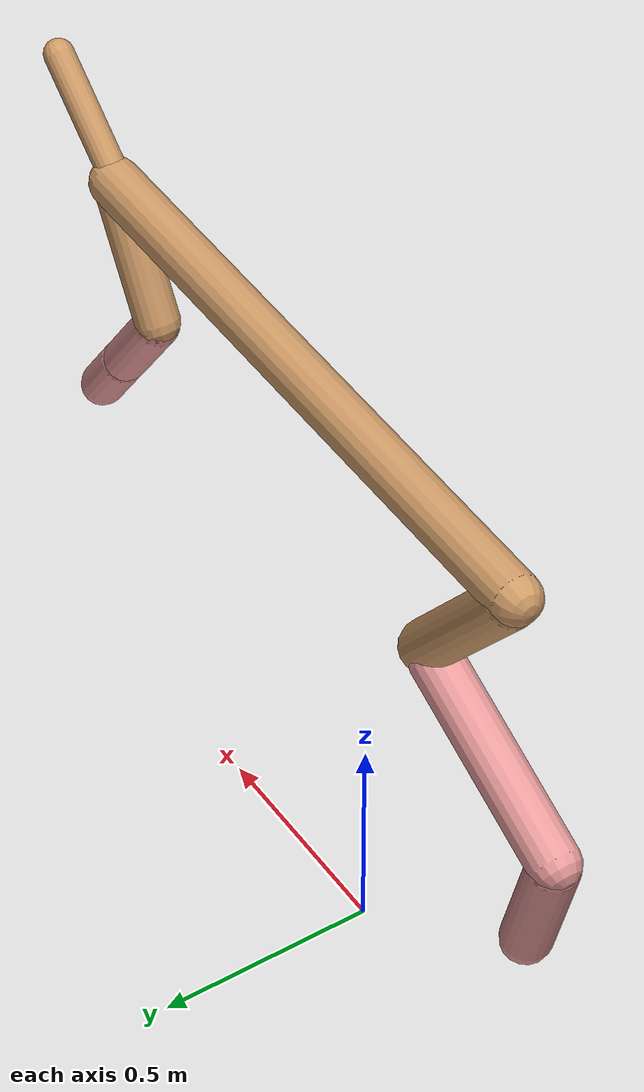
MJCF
<mujoco model="cheetah">
  <compiler angle="radian" coordinate="local" inertiafromgeom="true" settotalmass="14" />
  <default>
    <joint armature=".1" damping=".01" limited="true" solimplimit="0 .8 .03" solreflimit=".02 1" stiffness="8" />
    <geom conaffinity="0" condim="3" contype="1" friction="0.8 .1 .1" rgba="0.8 0.6 .4 1" solimp="0.0 0.8 0.01" solref="0.02 1" />
    <motor ctrllimited="true" ctrlrange="-1 1" />
  </default>
  <size nstack="300000" nuser_geom="1" />
  <option gravity="0 0 -9.81" timestep="0.01" />
  <worldbody>
    <body name="torso" pos="0.0 0.0 1.3811226075021699">
      <joint armature="0" axis="1 0 0" damping="0" limited="false" name="ignorex" pos="0 0 0" stiffness="0" type="slide" />
      <joint armature="0" axis="0 0 1" damping="0" limited="false" name="ignorez" pos="0 0 0" stiffness="0" type="slide" />
      <joint armature="0" axis="0 1 0" damping="0" limited="false" name="ignorey" pos="0 0 0" stiffness="0" type="hinge" />
      <geom fromto="-0.5 0.0 0.0 0.9574910506082805 0.0 0.0" name="torso" size="0.05612526258538442" type="capsule" />
      <geom axisangle="0 1 0 .87" name="head" pos="1.0574910506082804 0.0 0.1" size="0.033045607145175085 0.15" type="capsule" />

      <body name="bthigh" pos="-.5 0 0">
        <joint axis="0 1 0" damping="6" name="bthigh" pos="0 0 0" range="-.52 1.05" stiffness="240" type="hinge" />
        <geom axisangle="0 1 0 -3.8" name="bthigh" pos="0.1510311259080939 0.0 -0.19634046368052208" size="0.056589544952635754 0.2286972695659446" type="capsule" />
        <body name="bshin" pos="0.2620622518161878 0.0 -0.38268092736104414">
          <joint axis="0 1 0" damping="4.5" name="bshin" pos="0 0 0" range="-.785 .785" stiffness="180" type="hinge" />
          <geom axisangle="0 1 0 -2.03" name="bshin" pos="-0.21744253142644548 0.0 -0.10872126571322274" rgba="0.9 0.6 0.6 1" size="0.056589544952635754 0.23658338230959788" type="capsule" />
          <body name="bfoot" pos="-0.43488506285289097 0.0 -0.21744253142644548">
            <joint axis="0 1 0" damping="3" name="bfoot" pos="0 0 0" range="-.4 .785" stiffness="120" type="hinge" />
            <geom axisangle="0 1 0 -.27" name="bfoot" pos="0.04603186793455466 0.0 -0.14883637298839342" rgba="0.9 0.6 0.6 1" size="0.056589544952635754 0.14825891958068135" type="capsule" />
            <inertial mass="10" />
          </body>
        </body>
      </body>
      <body name="fthigh" pos="0.9574910506082805 0.0 0.0">
        <joint axis="0 1 0" damping="4.5" name="fthigh" pos="0 0 0" range="-1.5 0.8" stiffness="180" type="hinge" />
        <geom axisangle="0 1 0 .52" name="fthigh" pos="-0.08081818309937364 0.0 -0.13854545674178337" size="0.04912545299252833 0.15447014325366581" type="capsule" />
        <body name="fshin" pos="-0.16163636619874727 0.0 -0.27709091348356674">
          <joint axis="0 1 0" damping="3" name="fshin" pos="0 0 0" range="-1.2 1.1" stiffness="120" type="hinge" />
          <geom axisangle="0 1 0 -.6" name="fshin" pos="0.07501864663803677 0.0 -0.10387197226805091" rgba="0.9 0.6 0.6 1" size="0.04912545299252833 0.12311154274352314" type="capsule" />
          <body name="ffoot" pos="0.15003729327607354 0.0 -0.20774394453610182">
            <joint axis="0 1 0" damping="1.5" name="ffoot" pos="0 0 0" range="-3.1 -0.3" stiffness="60" type="hinge" />
            <geom axisangle="0 1 0 -.6" name="ffoot" pos="0.051110601553162154 0.0 -0.0795053801938078" rgba="0.9 0.6 0.6 1" size="0.04912545299252833 0.08130007539666623" type="capsule" />
            <inertial mass="10" />
          </body>
        </body>
      </body>
    </body>
  </worldbody>
  <actuator>
    <motor gear="120" joint="bthigh" name="bthigh" />
    <motor gear="90" joint="bshin" name="bshin" />
    <motor gear="60" joint="bfoot" name="bfoot" />
    <motor gear="120" joint="fthigh" name="fthigh" />
    <motor gear="60" joint="fshin" name="fshin" />
    <motor gear="30" joint="ffoot" name="ffoot" />
  </actuator>
</mujoco>
